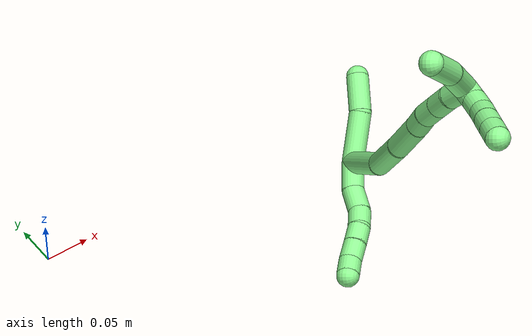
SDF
<sdf version="1.7">
 <world name="default">
  <model name="13">
   <static>0</static>
   <link name="13">
    <collision name="collision-cylinder-e_1_2_8">
     <pose>0.011893 -0.011861 0.003323 1.29767 0.767871 0.594576</pose>
     <geometry><cylinder><radius>0.0125</radius><length>0.034244</length></cylinder></geometry>
     <surface>
      <friction><ode><mu>1.16</mu><mu2>1.16</mu2><slip1>0</slip1><slip2>0</slip2></ode></friction>
      <contact><ode><kp>1e+06</kp><kd>1</kd><max_vel>0</max_vel><min_depth>0.001</min_depth></ode></contact>
     </surface>
    </collision>
    <visual name="visual-cylinder-e_1_2_8">
     <pose>0.011893 -0.011861 0.003323 1.29767 0.767871 0.594576</pose>
     <geometry><cylinder><radius>0.0125</radius><length>0.034244</length></cylinder></geometry>
     <material><ambient>0.564706 0.984314 0.572549 1</ambient></material>
    </visual>
    <collision name="collision-cylinder-e_2_8_9">
     <pose>0.032323 -0.033061 0.013438 0.941912 0.636561 0.332428</pose>
     <geometry><cylinder><radius>0.0125</radius><length>0.028723</length></cylinder></geometry>
     <surface>
      <friction><ode><mu>1.16</mu><mu2>1.16</mu2><slip1>0</slip1><slip2>0</slip2></ode></friction>
      <contact><ode><kp>1e+06</kp><kd>1</kd><max_vel>0</max_vel><min_depth>0.001</min_depth></ode></contact>
     </surface>
    </collision>
    <visual name="visual-cylinder-e_2_8_9">
     <pose>0.032323 -0.033061 0.013438 0.941912 0.636561 0.332428</pose>
     <geometry><cylinder><radius>0.0125</radius><length>0.028723</length></cylinder></geometry>
     <material><ambient>0.564706 0.984314 0.572549 1</ambient></material>
    </visual>
    <collision name="collision-cylinder-e_3_9_10">
     <pose>0.045659 -0.052507 0.0237 1.24028 0.422101 0.303634</pose>
     <geometry><cylinder><radius>0.0125</radius><length>0.023428</length></cylinder></geometry>
     <surface>
      <friction><ode><mu>1.16</mu><mu2>1.16</mu2><slip1>0</slip1><slip2>0</slip2></ode></friction>
      <contact><ode><kp>1e+06</kp><kd>1</kd><max_vel>0</max_vel><min_depth>0.001</min_depth></ode></contact>
     </surface>
    </collision>
    <visual name="visual-cylinder-e_3_9_10">
     <pose>0.045659 -0.052507 0.0237 1.24028 0.422101 0.303634</pose>
     <geometry><cylinder><radius>0.0125</radius><length>0.023428</length></cylinder></geometry>
     <material><ambient>0.564706 0.984314 0.572549 1</ambient></material>
    </visual>
    <collision name="collision-cylinder-e_4_10_11">
     <pose>0.055919 -0.071335 0.02769 1.51098 0.558729 0.527796</pose>
     <geometry><cylinder><radius>0.0125</radius><length>0.020606</length></cylinder></geometry>
     <surface>
      <friction><ode><mu>1.16</mu><mu2>1.16</mu2><slip1>0</slip1><slip2>0</slip2></ode></friction>
      <contact><ode><kp>1e+06</kp><kd>1</kd><max_vel>0</max_vel><min_depth>0.001</min_depth></ode></contact>
     </surface>
    </collision>
    <visual name="visual-cylinder-e_4_10_11">
     <pose>0.055919 -0.071335 0.02769 1.51098 0.558729 0.527796</pose>
     <geometry><cylinder><radius>0.0125</radius><length>0.020606</length></cylinder></geometry>
     <material><ambient>0.564706 0.984314 0.572549 1</ambient></material>
    </visual>
    <collision name="collision-cylinder-e_5_11_12">
     <pose>0.067702 -0.089096 0.028282 1.56306 0.61019 0.605768</pose>
     <geometry><cylinder><radius>0.0125</radius><length>0.022062</length></cylinder></geometry>
     <surface>
      <friction><ode><mu>1.16</mu><mu2>1.16</mu2><slip1>0</slip1><slip2>0</slip2></ode></friction>
      <contact><ode><kp>1e+06</kp><kd>1</kd><max_vel>0</max_vel><min_depth>0.001</min_depth></ode></contact>
     </surface>
    </collision>
    <visual name="visual-cylinder-e_5_11_12">
     <pose>0.067702 -0.089096 0.028282 1.56306 0.61019 0.605768</pose>
     <geometry><cylinder><radius>0.0125</radius><length>0.022062</length></cylinder></geometry>
     <material><ambient>0.564706 0.984314 0.572549 1</ambient></material>
    </visual>
    <collision name="collision-cylinder-e_6_12_6">
     <pose>0.07813 -0.107499 0.030601 1.33508 0.403189 0.31945</pose>
     <geometry><cylinder><radius>0.0125</radius><length>0.020938</length></cylinder></geometry>
     <surface>
      <friction><ode><mu>1.16</mu><mu2>1.16</mu2><slip1>0</slip1><slip2>0</slip2></ode></friction>
      <contact><ode><kp>1e+06</kp><kd>1</kd><max_vel>0</max_vel><min_depth>0.001</min_depth></ode></contact>
     </surface>
    </collision>
    <visual name="visual-cylinder-e_6_12_6">
     <pose>0.07813 -0.107499 0.030601 1.33508 0.403189 0.31945</pose>
     <geometry><cylinder><radius>0.0125</radius><length>0.020938</length></cylinder></geometry>
     <material><ambient>0.564706 0.984314 0.572549 1</ambient></material>
    </visual>
    <collision name="collision-cylinder-e_1_2_13">
     <pose>-0.023675 0.015211 0.001906 -1.44616 -0.996156 0.894922</pose>
     <geometry><cylinder><radius>0.0125</radius><length>0.05641</length></cylinder></geometry>
     <surface>
      <friction><ode><mu>1.16</mu><mu2>1.16</mu2><slip1>0</slip1><slip2>0</slip2></ode></friction>
      <contact><ode><kp>1e+06</kp><kd>1</kd><max_vel>0</max_vel><min_depth>0.001</min_depth></ode></contact>
     </surface>
    </collision>
    <visual name="visual-cylinder-e_1_2_13">
     <pose>-0.023675 0.015211 0.001906 -1.44616 -0.996156 0.894922</pose>
     <geometry><cylinder><radius>0.0125</radius><length>0.05641</length></cylinder></geometry>
     <material><ambient>0.564706 0.984314 0.572549 1</ambient></material>
    </visual>
    <collision name="collision-cylinder-e_2_13_5">
     <pose>-0.063729 0.043924 -0.001136 -1.92205 -0.850348 1.15017</pose>
     <geometry><cylinder><radius>0.0125</radius><length>0.04359</length></cylinder></geometry>
     <surface>
      <friction><ode><mu>1.16</mu><mu2>1.16</mu2><slip1>0</slip1><slip2>0</slip2></ode></friction>
      <contact><ode><kp>1e+06</kp><kd>1</kd><max_vel>0</max_vel><min_depth>0.001</min_depth></ode></contact>
     </surface>
    </collision>
    <visual name="visual-cylinder-e_2_13_5">
     <pose>-0.063729 0.043924 -0.001136 -1.92205 -0.850348 1.15017</pose>
     <geometry><cylinder><radius>0.0125</radius><length>0.04359</length></cylinder></geometry>
     <material><ambient>0.564706 0.984314 0.572549 1</ambient></material>
    </visual>
    <collision name="collision-cylinder-e_1_2_14">
     <pose>-0.011367 -0.028531 0.031443 0.736882 -0.2616 -0.101489</pose>
     <geometry><cylinder><radius>0.0125</radius><length>0.087907</length></cylinder></geometry>
     <surface>
      <friction><ode><mu>1.16</mu><mu2>1.16</mu2><slip1>0</slip1><slip2>0</slip2></ode></friction>
      <contact><ode><kp>1e+06</kp><kd>1</kd><max_vel>0</max_vel><min_depth>0.001</min_depth></ode></contact>
     </surface>
    </collision>
    <visual name="visual-cylinder-e_1_2_14">
     <pose>-0.011367 -0.028531 0.031443 0.736882 -0.2616 -0.101489</pose>
     <geometry><cylinder><radius>0.0125</radius><length>0.087907</length></cylinder></geometry>
     <material><ambient>0.564706 0.984314 0.572549 1</ambient></material>
    </visual>
    <collision name="collision-cylinder-e_2_14_15">
     <pose>-0.04013 -0.074826 0.084959 0.67764 -0.550603 -0.198439</pose>
     <geometry><cylinder><radius>0.0125</radius><length>0.066495</length></cylinder></geometry>
     <surface>
      <friction><ode><mu>1.16</mu><mu2>1.16</mu2><slip1>0</slip1><slip2>0</slip2></ode></friction>
      <contact><ode><kp>1e+06</kp><kd>1</kd><max_vel>0</max_vel><min_depth>0.001</min_depth></ode></contact>
     </surface>
    </collision>
    <visual name="visual-cylinder-e_2_14_15">
     <pose>-0.04013 -0.074826 0.084959 0.67764 -0.550603 -0.198439</pose>
     <geometry><cylinder><radius>0.0125</radius><length>0.066495</length></cylinder></geometry>
     <material><ambient>0.564706 0.984314 0.572549 1</ambient></material>
    </visual>
    <collision name="collision-cylinder-e_3_15_16">
     <pose>-0.07263 -0.10206 0.124498 0.496872 -0.650052 -0.170551</pose>
     <geometry><cylinder><radius>0.0125</radius><length>0.049916</length></cylinder></geometry>
     <surface>
      <friction><ode><mu>1.16</mu><mu2>1.16</mu2><slip1>0</slip1><slip2>0</slip2></ode></friction>
      <contact><ode><kp>1e+06</kp><kd>1</kd><max_vel>0</max_vel><min_depth>0.001</min_depth></ode></contact>
     </surface>
    </collision>
    <visual name="visual-cylinder-e_3_15_16">
     <pose>-0.07263 -0.10206 0.124498 0.496872 -0.650052 -0.170551</pose>
     <geometry><cylinder><radius>0.0125</radius><length>0.049916</length></cylinder></geometry>
     <material><ambient>0.564706 0.984314 0.572549 1</ambient></material>
    </visual>
    <collision name="collision-cylinder-e_4_16_17">
     <pose>-0.09503 -0.115183 0.149385 0.457317 -0.722709 -0.175468</pose>
     <geometry><cylinder><radius>0.0125</radius><length>0.022056</length></cylinder></geometry>
     <surface>
      <friction><ode><mu>1.16</mu><mu2>1.16</mu2><slip1>0</slip1><slip2>0</slip2></ode></friction>
      <contact><ode><kp>1e+06</kp><kd>1</kd><max_vel>0</max_vel><min_depth>0.001</min_depth></ode></contact>
     </surface>
    </collision>
    <visual name="visual-cylinder-e_4_16_17">
     <pose>-0.09503 -0.115183 0.149385 0.457317 -0.722709 -0.175468</pose>
     <geometry><cylinder><radius>0.0125</radius><length>0.022056</length></cylinder></geometry>
     <material><ambient>0.564706 0.984314 0.572549 1</ambient></material>
    </visual>
    <collision name="collision-cylinder-e_5_17_18">
     <pose>-0.10886 -0.122703 0.166165 0.391938 -0.573128 -0.116863</pose>
     <geometry><cylinder><radius>0.0125</radius><length>0.024106</length></cylinder></geometry>
     <surface>
      <friction><ode><mu>1.16</mu><mu2>1.16</mu2><slip1>0</slip1><slip2>0</slip2></ode></friction>
      <contact><ode><kp>1e+06</kp><kd>1</kd><max_vel>0</max_vel><min_depth>0.001</min_depth></ode></contact>
     </surface>
    </collision>
    <visual name="visual-cylinder-e_5_17_18">
     <pose>-0.10886 -0.122703 0.166165 0.391938 -0.573128 -0.116863</pose>
     <geometry><cylinder><radius>0.0125</radius><length>0.024106</length></cylinder></geometry>
     <material><ambient>0.564706 0.984314 0.572549 1</ambient></material>
    </visual>
    <collision name="collision-cylinder-e_6_18_19">
     <pose>-0.121993 -0.13111 0.185058 0.444241 -0.55851 -0.129342</pose>
     <geometry><cylinder><radius>0.0125</radius><length>0.024902</length></cylinder></geometry>
     <surface>
      <friction><ode><mu>1.16</mu><mu2>1.16</mu2><slip1>0</slip1><slip2>0</slip2></ode></friction>
      <contact><ode><kp>1e+06</kp><kd>1</kd><max_vel>0</max_vel><min_depth>0.001</min_depth></ode></contact>
     </surface>
    </collision>
    <visual name="visual-cylinder-e_6_18_19">
     <pose>-0.121993 -0.13111 0.185058 0.444241 -0.55851 -0.129342</pose>
     <geometry><cylinder><radius>0.0125</radius><length>0.024902</length></cylinder></geometry>
     <material><ambient>0.564706 0.984314 0.572549 1</ambient></material>
    </visual>
    <collision name="collision-cylinder-e_7_19_1">
     <pose>-0.134075 -0.1386 0.20521 0.271251 -0.461687 -0.064125</pose>
     <geometry><cylinder><radius>0.0125</radius><length>0.024619</length></cylinder></geometry>
     <surface>
      <friction><ode><mu>1.16</mu><mu2>1.16</mu2><slip1>0</slip1><slip2>0</slip2></ode></friction>
      <contact><ode><kp>1e+06</kp><kd>1</kd><max_vel>0</max_vel><min_depth>0.001</min_depth></ode></contact>
     </surface>
    </collision>
    <visual name="visual-cylinder-e_7_19_1">
     <pose>-0.134075 -0.1386 0.20521 0.271251 -0.461687 -0.064125</pose>
     <geometry><cylinder><radius>0.0125</radius><length>0.024619</length></cylinder></geometry>
     <material><ambient>0.564706 0.984314 0.572549 1</ambient></material>
    </visual>
    <collision name="collision-cylinder-e_1_1_20">
     <pose>-0.15608 -0.163858 0.219743 1.39704 -0.630289 -0.534445</pose>
     <geometry><cylinder><radius>0.0125</radius><length>0.056064</length></cylinder></geometry>
     <surface>
      <friction><ode><mu>1.16</mu><mu2>1.16</mu2><slip1>0</slip1><slip2>0</slip2></ode></friction>
      <contact><ode><kp>1e+06</kp><kd>1</kd><max_vel>0</max_vel><min_depth>0.001</min_depth></ode></contact>
     </surface>
    </collision>
    <visual name="visual-cylinder-e_1_1_20">
     <pose>-0.15608 -0.163858 0.219743 1.39704 -0.630289 -0.534445</pose>
     <geometry><cylinder><radius>0.0125</radius><length>0.056064</length></cylinder></geometry>
     <material><ambient>0.564706 0.984314 0.572549 1</ambient></material>
    </visual>
    <collision name="collision-cylinder-e_2_20_4">
     <pose>-0.184442 -0.204666 0.223575 1.57529 -0.569259 -0.571685</pose>
     <geometry><cylinder><radius>0.0125</radius><length>0.043936</length></cylinder></geometry>
     <surface>
      <friction><ode><mu>1.16</mu><mu2>1.16</mu2><slip1>0</slip1><slip2>0</slip2></ode></friction>
      <contact><ode><kp>1e+06</kp><kd>1</kd><max_vel>0</max_vel><min_depth>0.001</min_depth></ode></contact>
     </surface>
    </collision>
    <visual name="visual-cylinder-e_2_20_4">
     <pose>-0.184442 -0.204666 0.223575 1.57529 -0.569259 -0.571685</pose>
     <geometry><cylinder><radius>0.0125</radius><length>0.043936</length></cylinder></geometry>
     <material><ambient>0.564706 0.984314 0.572549 1</ambient></material>
    </visual>
    <collision name="collision-cylinder-e_1_1_21">
     <pose>-0.135892 -0.148052 0.222486 0.773246 0.375365 0.154329</pose>
     <geometry><cylinder><radius>0.0125</radius><length>0.02</length></cylinder></geometry>
     <surface>
      <friction><ode><mu>1.16</mu><mu2>1.16</mu2><slip1>0</slip1><slip2>0</slip2></ode></friction>
      <contact><ode><kp>1e+06</kp><kd>1</kd><max_vel>0</max_vel><min_depth>0.001</min_depth></ode></contact>
     </surface>
    </collision>
    <visual name="visual-cylinder-e_1_1_21">
     <pose>-0.135892 -0.148052 0.222486 0.773246 0.375365 0.154329</pose>
     <geometry><cylinder><radius>0.0125</radius><length>0.02</length></cylinder></geometry>
     <material><ambient>0.564706 0.984314 0.572549 1</ambient></material>
    </visual>
    <collision name="collision-cylinder-e_2_21_22">
     <pose>-0.129295 -0.161641 0.235558 0.835496 0.297476 0.132829</pose>
     <geometry><cylinder><radius>0.0125</radius><length>0.02</length></cylinder></geometry>
     <surface>
      <friction><ode><mu>1.16</mu><mu2>1.16</mu2><slip1>0</slip1><slip2>0</slip2></ode></friction>
      <contact><ode><kp>1e+06</kp><kd>1</kd><max_vel>0</max_vel><min_depth>0.001</min_depth></ode></contact>
     </surface>
    </collision>
    <visual name="visual-cylinder-e_2_21_22">
     <pose>-0.129295 -0.161641 0.235558 0.835496 0.297476 0.132829</pose>
     <geometry><cylinder><radius>0.0125</radius><length>0.02</length></cylinder></geometry>
     <material><ambient>0.564706 0.984314 0.572549 1</ambient></material>
    </visual>
    <collision name="collision-cylinder-e_3_22_23">
     <pose>-0.125343 -0.176993 0.247512 0.980034 0.102262 0.054582</pose>
     <geometry><cylinder><radius>0.0125</radius><length>0.02</length></cylinder></geometry>
     <surface>
      <friction><ode><mu>1.16</mu><mu2>1.16</mu2><slip1>0</slip1><slip2>0</slip2></ode></friction>
      <contact><ode><kp>1e+06</kp><kd>1</kd><max_vel>0</max_vel><min_depth>0.001</min_depth></ode></contact>
     </surface>
    </collision>
    <visual name="visual-cylinder-e_3_22_23">
     <pose>-0.125343 -0.176993 0.247512 0.980034 0.102262 0.054582</pose>
     <geometry><cylinder><radius>0.0125</radius><length>0.02</length></cylinder></geometry>
     <material><ambient>0.564706 0.984314 0.572549 1</ambient></material>
    </visual>
    <collision name="collision-cylinder-e_4_23_24">
     <pose>-0.122766 -0.193281 0.258811 0.948534 0.156224 0.080317</pose>
     <geometry><cylinder><radius>0.0125</radius><length>0.02</length></cylinder></geometry>
     <surface>
      <friction><ode><mu>1.16</mu><mu2>1.16</mu2><slip1>0</slip1><slip2>0</slip2></ode></friction>
      <contact><ode><kp>1e+06</kp><kd>1</kd><max_vel>0</max_vel><min_depth>0.001</min_depth></ode></contact>
     </surface>
    </collision>
    <visual name="visual-cylinder-e_4_23_24">
     <pose>-0.122766 -0.193281 0.258811 0.948534 0.156224 0.080317</pose>
     <geometry><cylinder><radius>0.0125</radius><length>0.02</length></cylinder></geometry>
     <material><ambient>0.564706 0.984314 0.572549 1</ambient></material>
    </visual>
    <collision name="collision-cylinder-e_5_24_3">
     <pose>-0.119639 -0.209336 0.270321 0.949074 0.157806 0.081187</pose>
     <geometry><cylinder><radius>0.0125</radius><length>0.02</length></cylinder></geometry>
     <surface>
      <friction><ode><mu>1.16</mu><mu2>1.16</mu2><slip1>0</slip1><slip2>0</slip2></ode></friction>
      <contact><ode><kp>1e+06</kp><kd>1</kd><max_vel>0</max_vel><min_depth>0.001</min_depth></ode></contact>
     </surface>
    </collision>
    <visual name="visual-cylinder-e_5_24_3">
     <pose>-0.119639 -0.209336 0.270321 0.949074 0.157806 0.081187</pose>
     <geometry><cylinder><radius>0.0125</radius><length>0.02</length></cylinder></geometry>
     <material><ambient>0.564706 0.984314 0.572549 1</ambient></material>
    </visual>
    <collision name="collision-sphere-3">
     <pose>-0.118067 -0.217363 0.276073 0 -0 0</pose>
     <geometry><sphere><radius>0.0125</radius></sphere></geometry>
     <surface>
      <friction><ode><mu>1.16</mu><mu2>1.16</mu2><slip1>0</slip1><slip2>0</slip2></ode></friction>
      <contact><ode><kp>1e+06</kp><kd>1</kd><max_vel>0</max_vel><min_depth>0.001</min_depth></ode></contact>
     </surface>
    </collision>
    <visual name="visual-sphere-3">
     <pose>-0.118067 -0.217363 0.276073 0 -0 0</pose>
     <geometry><sphere><radius>0.0125</radius></sphere></geometry>
     <material><ambient>0.564706 0.984314 0.572549 1</ambient></material>
    </visual>
    <collision name="collision-sphere-24">
     <pose>-0.121211 -0.201308 0.264569 0 -0 0</pose>
     <geometry><sphere><radius>0.0125</radius></sphere></geometry>
     <surface>
      <friction><ode><mu>1.16</mu><mu2>1.16</mu2><slip1>0</slip1><slip2>0</slip2></ode></friction>
      <contact><ode><kp>1e+06</kp><kd>1</kd><max_vel>0</max_vel><min_depth>0.001</min_depth></ode></contact>
     </surface>
    </collision>
    <visual name="visual-sphere-24">
     <pose>-0.121211 -0.201308 0.264569 0 -0 0</pose>
     <geometry><sphere><radius>0.0125</radius></sphere></geometry>
     <material><ambient>0.564706 0.984314 0.572549 1</ambient></material>
    </visual>
    <collision name="collision-sphere-23">
     <pose>-0.124322 -0.185255 0.253053 0 -0 0</pose>
     <geometry><sphere><radius>0.0125</radius></sphere></geometry>
     <surface>
      <friction><ode><mu>1.16</mu><mu2>1.16</mu2><slip1>0</slip1><slip2>0</slip2></ode></friction>
      <contact><ode><kp>1e+06</kp><kd>1</kd><max_vel>0</max_vel><min_depth>0.001</min_depth></ode></contact>
     </surface>
    </collision>
    <visual name="visual-sphere-23">
     <pose>-0.124322 -0.185255 0.253053 0 -0 0</pose>
     <geometry><sphere><radius>0.0125</radius></sphere></geometry>
     <material><ambient>0.564706 0.984314 0.572549 1</ambient></material>
    </visual>
    <collision name="collision-sphere-22">
     <pose>-0.126364 -0.168731 0.241971 0 -0 0</pose>
     <geometry><sphere><radius>0.0125</radius></sphere></geometry>
     <surface>
      <friction><ode><mu>1.16</mu><mu2>1.16</mu2><slip1>0</slip1><slip2>0</slip2></ode></friction>
      <contact><ode><kp>1e+06</kp><kd>1</kd><max_vel>0</max_vel><min_depth>0.001</min_depth></ode></contact>
     </surface>
    </collision>
    <visual name="visual-sphere-22">
     <pose>-0.126364 -0.168731 0.241971 0 -0 0</pose>
     <geometry><sphere><radius>0.0125</radius></sphere></geometry>
     <material><ambient>0.564706 0.984314 0.572549 1</ambient></material>
    </visual>
    <collision name="collision-sphere-21">
     <pose>-0.132226 -0.15455 0.229144 0 -0 0</pose>
     <geometry><sphere><radius>0.0125</radius></sphere></geometry>
     <surface>
      <friction><ode><mu>1.16</mu><mu2>1.16</mu2><slip1>0</slip1><slip2>0</slip2></ode></friction>
      <contact><ode><kp>1e+06</kp><kd>1</kd><max_vel>0</max_vel><min_depth>0.001</min_depth></ode></contact>
     </surface>
    </collision>
    <visual name="visual-sphere-21">
     <pose>-0.132226 -0.15455 0.229144 0 -0 0</pose>
     <geometry><sphere><radius>0.0125</radius></sphere></geometry>
     <material><ambient>0.564706 0.984314 0.572549 1</ambient></material>
    </visual>
    <collision name="collision-sphere-4">
     <pose>-0.196283 -0.22317 0.223492 0 -0 0</pose>
     <geometry><sphere><radius>0.0125</radius></sphere></geometry>
     <surface>
      <friction><ode><mu>1.16</mu><mu2>1.16</mu2><slip1>0</slip1><slip2>0</slip2></ode></friction>
      <contact><ode><kp>1e+06</kp><kd>1</kd><max_vel>0</max_vel><min_depth>0.001</min_depth></ode></contact>
     </surface>
    </collision>
    <visual name="visual-sphere-4">
     <pose>-0.196283 -0.22317 0.223492 0 -0 0</pose>
     <geometry><sphere><radius>0.0125</radius></sphere></geometry>
     <material><ambient>0.564706 0.984314 0.572549 1</ambient></material>
    </visual>
    <collision name="collision-sphere-20">
     <pose>-0.172601 -0.186163 0.223658 0 -0 0</pose>
     <geometry><sphere><radius>0.0125</radius></sphere></geometry>
     <surface>
      <friction><ode><mu>1.16</mu><mu2>1.16</mu2><slip1>0</slip1><slip2>0</slip2></ode></friction>
      <contact><ode><kp>1e+06</kp><kd>1</kd><max_vel>0</max_vel><min_depth>0.001</min_depth></ode></contact>
     </surface>
    </collision>
    <visual name="visual-sphere-20">
     <pose>-0.172601 -0.186163 0.223658 0 -0 0</pose>
     <geometry><sphere><radius>0.0125</radius></sphere></geometry>
     <material><ambient>0.564706 0.984314 0.572549 1</ambient></material>
    </visual>
    <collision name="collision-sphere-12">
     <pose>0.074023 -0.098136 0.028352 0 -0 0</pose>
     <geometry><sphere><radius>0.0125</radius></sphere></geometry>
     <surface>
      <friction><ode><mu>1.16</mu><mu2>1.16</mu2><slip1>0</slip1><slip2>0</slip2></ode></friction>
      <contact><ode><kp>1e+06</kp><kd>1</kd><max_vel>0</max_vel><min_depth>0.001</min_depth></ode></contact>
     </surface>
    </collision>
    <visual name="visual-sphere-12">
     <pose>0.074023 -0.098136 0.028352 0 -0 0</pose>
     <geometry><sphere><radius>0.0125</radius></sphere></geometry>
     <material><ambient>0.564706 0.984314 0.572549 1</ambient></material>
    </visual>
    <collision name="collision-sphere-11">
     <pose>0.061381 -0.080056 0.028212 0 -0 0</pose>
     <geometry><sphere><radius>0.0125</radius></sphere></geometry>
     <surface>
      <friction><ode><mu>1.16</mu><mu2>1.16</mu2><slip1>0</slip1><slip2>0</slip2></ode></friction>
      <contact><ode><kp>1e+06</kp><kd>1</kd><max_vel>0</max_vel><min_depth>0.001</min_depth></ode></contact>
     </surface>
    </collision>
    <visual name="visual-sphere-11">
     <pose>0.061381 -0.080056 0.028212 0 -0 0</pose>
     <geometry><sphere><radius>0.0125</radius></sphere></geometry>
     <material><ambient>0.564706 0.984314 0.572549 1</ambient></material>
    </visual>
    <collision name="collision-sphere-10">
     <pose>0.050458 -0.062615 0.027168 0 -0 0</pose>
     <geometry><sphere><radius>0.0125</radius></sphere></geometry>
     <surface>
      <friction><ode><mu>1.16</mu><mu2>1.16</mu2><slip1>0</slip1><slip2>0</slip2></ode></friction>
      <contact><ode><kp>1e+06</kp><kd>1</kd><max_vel>0</max_vel><min_depth>0.001</min_depth></ode></contact>
     </surface>
    </collision>
    <visual name="visual-sphere-10">
     <pose>0.050458 -0.062615 0.027168 0 -0 0</pose>
     <geometry><sphere><radius>0.0125</radius></sphere></geometry>
     <material><ambient>0.564706 0.984314 0.572549 1</ambient></material>
    </visual>
    <collision name="collision-sphere-9">
     <pose>0.04086 -0.0424 0.020232 0 -0 0</pose>
     <geometry><sphere><radius>0.0125</radius></sphere></geometry>
     <surface>
      <friction><ode><mu>1.16</mu><mu2>1.16</mu2><slip1>0</slip1><slip2>0</slip2></ode></friction>
      <contact><ode><kp>1e+06</kp><kd>1</kd><max_vel>0</max_vel><min_depth>0.001</min_depth></ode></contact>
     </surface>
    </collision>
    <visual name="visual-sphere-9">
     <pose>0.04086 -0.0424 0.020232 0 -0 0</pose>
     <geometry><sphere><radius>0.0125</radius></sphere></geometry>
     <material><ambient>0.564706 0.984314 0.572549 1</ambient></material>
    </visual>
    <collision name="collision-sphere-2">
     <geometry><sphere><radius>0.0125</radius></sphere></geometry>
     <surface>
      <friction><ode><mu>1.16</mu><mu2>1.16</mu2><slip1>0</slip1><slip2>0</slip2></ode></friction>
      <contact><ode><kp>1e+06</kp><kd>1</kd><max_vel>0</max_vel><min_depth>0.001</min_depth></ode></contact>
     </surface>
    </collision>
    <visual name="visual-sphere-2">
     <geometry><sphere><radius>0.0125</radius></sphere></geometry>
     <material><ambient>0.564706 0.984314 0.572549 1</ambient></material>
    </visual>
    <collision name="collision-sphere-19">
     <pose>-0.128592 -0.135648 0.194592 0 -0 0</pose>
     <geometry><sphere><radius>0.0125</radius></sphere></geometry>
     <surface>
      <friction><ode><mu>1.16</mu><mu2>1.16</mu2><slip1>0</slip1><slip2>0</slip2></ode></friction>
      <contact><ode><kp>1e+06</kp><kd>1</kd><max_vel>0</max_vel><min_depth>0.001</min_depth></ode></contact>
     </surface>
    </collision>
    <visual name="visual-sphere-19">
     <pose>-0.128592 -0.135648 0.194592 0 -0 0</pose>
     <geometry><sphere><radius>0.0125</radius></sphere></geometry>
     <material><ambient>0.564706 0.984314 0.572549 1</ambient></material>
    </visual>
    <collision name="collision-sphere-8">
     <pose>0.023786 -0.023721 0.006645 0 -0 0</pose>
     <geometry><sphere><radius>0.0125</radius></sphere></geometry>
     <surface>
      <friction><ode><mu>1.16</mu><mu2>1.16</mu2><slip1>0</slip1><slip2>0</slip2></ode></friction>
      <contact><ode><kp>1e+06</kp><kd>1</kd><max_vel>0</max_vel><min_depth>0.001</min_depth></ode></contact>
     </surface>
    </collision>
    <visual name="visual-sphere-8">
     <pose>0.023786 -0.023721 0.006645 0 -0 0</pose>
     <geometry><sphere><radius>0.0125</radius></sphere></geometry>
     <material><ambient>0.564706 0.984314 0.572549 1</ambient></material>
    </visual>
    <collision name="collision-sphere-6">
     <pose>0.082238 -0.116862 0.03285 0 -0 0</pose>
     <geometry><sphere><radius>0.0125</radius></sphere></geometry>
     <surface>
      <friction><ode><mu>1.16</mu><mu2>1.16</mu2><slip1>0</slip1><slip2>0</slip2></ode></friction>
      <contact><ode><kp>1e+06</kp><kd>1</kd><max_vel>0</max_vel><min_depth>0.001</min_depth></ode></contact>
     </surface>
    </collision>
    <visual name="visual-sphere-6">
     <pose>0.082238 -0.116862 0.03285 0 -0 0</pose>
     <geometry><sphere><radius>0.0125</radius></sphere></geometry>
     <material><ambient>0.564706 0.984314 0.572549 1</ambient></material>
    </visual>
    <collision name="collision-sphere-13">
     <pose>-0.04735 0.030423 0.003812 0 -0 0</pose>
     <geometry><sphere><radius>0.0125</radius></sphere></geometry>
     <surface>
      <friction><ode><mu>1.16</mu><mu2>1.16</mu2><slip1>0</slip1><slip2>0</slip2></ode></friction>
      <contact><ode><kp>1e+06</kp><kd>1</kd><max_vel>0</max_vel><min_depth>0.001</min_depth></ode></contact>
     </surface>
    </collision>
    <visual name="visual-sphere-13">
     <pose>-0.04735 0.030423 0.003812 0 -0 0</pose>
     <geometry><sphere><radius>0.0125</radius></sphere></geometry>
     <material><ambient>0.564706 0.984314 0.572549 1</ambient></material>
    </visual>
    <collision name="collision-sphere-5">
     <pose>-0.080108 0.057424 -0.006083 0 -0 0</pose>
     <geometry><sphere><radius>0.0125</radius></sphere></geometry>
     <surface>
      <friction><ode><mu>1.16</mu><mu2>1.16</mu2><slip1>0</slip1><slip2>0</slip2></ode></friction>
      <contact><ode><kp>1e+06</kp><kd>1</kd><max_vel>0</max_vel><min_depth>0.001</min_depth></ode></contact>
     </surface>
    </collision>
    <visual name="visual-sphere-5">
     <pose>-0.080108 0.057424 -0.006083 0 -0 0</pose>
     <geometry><sphere><radius>0.0125</radius></sphere></geometry>
     <material><ambient>0.564706 0.984314 0.572549 1</ambient></material>
    </visual>
    <collision name="collision-sphere-14">
     <pose>-0.022735 -0.057062 0.062886 0 -0 0</pose>
     <geometry><sphere><radius>0.0125</radius></sphere></geometry>
     <surface>
      <friction><ode><mu>1.16</mu><mu2>1.16</mu2><slip1>0</slip1><slip2>0</slip2></ode></friction>
      <contact><ode><kp>1e+06</kp><kd>1</kd><max_vel>0</max_vel><min_depth>0.001</min_depth></ode></contact>
     </surface>
    </collision>
    <visual name="visual-sphere-14">
     <pose>-0.022735 -0.057062 0.062886 0 -0 0</pose>
     <geometry><sphere><radius>0.0125</radius></sphere></geometry>
     <material><ambient>0.564706 0.984314 0.572549 1</ambient></material>
    </visual>
    <collision name="collision-sphere-15">
     <pose>-0.057525 -0.09259 0.107033 0 -0 0</pose>
     <geometry><sphere><radius>0.0125</radius></sphere></geometry>
     <surface>
      <friction><ode><mu>1.16</mu><mu2>1.16</mu2><slip1>0</slip1><slip2>0</slip2></ode></friction>
      <contact><ode><kp>1e+06</kp><kd>1</kd><max_vel>0</max_vel><min_depth>0.001</min_depth></ode></contact>
     </surface>
    </collision>
    <visual name="visual-sphere-15">
     <pose>-0.057525 -0.09259 0.107033 0 -0 0</pose>
     <geometry><sphere><radius>0.0125</radius></sphere></geometry>
     <material><ambient>0.564706 0.984314 0.572549 1</ambient></material>
    </visual>
    <collision name="collision-sphere-16">
     <pose>-0.087735 -0.111531 0.141964 0 -0 0</pose>
     <geometry><sphere><radius>0.0125</radius></sphere></geometry>
     <surface>
      <friction><ode><mu>1.16</mu><mu2>1.16</mu2><slip1>0</slip1><slip2>0</slip2></ode></friction>
      <contact><ode><kp>1e+06</kp><kd>1</kd><max_vel>0</max_vel><min_depth>0.001</min_depth></ode></contact>
     </surface>
    </collision>
    <visual name="visual-sphere-16">
     <pose>-0.087735 -0.111531 0.141964 0 -0 0</pose>
     <geometry><sphere><radius>0.0125</radius></sphere></geometry>
     <material><ambient>0.564706 0.984314 0.572549 1</ambient></material>
    </visual>
    <collision name="collision-sphere-17">
     <pose>-0.102324 -0.118835 0.156806 0 -0 0</pose>
     <geometry><sphere><radius>0.0125</radius></sphere></geometry>
     <surface>
      <friction><ode><mu>1.16</mu><mu2>1.16</mu2><slip1>0</slip1><slip2>0</slip2></ode></friction>
      <contact><ode><kp>1e+06</kp><kd>1</kd><max_vel>0</max_vel><min_depth>0.001</min_depth></ode></contact>
     </surface>
    </collision>
    <visual name="visual-sphere-17">
     <pose>-0.102324 -0.118835 0.156806 0 -0 0</pose>
     <geometry><sphere><radius>0.0125</radius></sphere></geometry>
     <material><ambient>0.564706 0.984314 0.572549 1</ambient></material>
    </visual>
    <collision name="collision-sphere-18">
     <pose>-0.115395 -0.126572 0.175524 0 -0 0</pose>
     <geometry><sphere><radius>0.0125</radius></sphere></geometry>
     <surface>
      <friction><ode><mu>1.16</mu><mu2>1.16</mu2><slip1>0</slip1><slip2>0</slip2></ode></friction>
      <contact><ode><kp>1e+06</kp><kd>1</kd><max_vel>0</max_vel><min_depth>0.001</min_depth></ode></contact>
     </surface>
    </collision>
    <visual name="visual-sphere-18">
     <pose>-0.115395 -0.126572 0.175524 0 -0 0</pose>
     <geometry><sphere><radius>0.0125</radius></sphere></geometry>
     <material><ambient>0.564706 0.984314 0.572549 1</ambient></material>
    </visual>
    <collision name="collision-sphere-1">
     <pose>-0.139558 -0.141553 0.215828 0 -0 0</pose>
     <geometry><sphere><radius>0.0125</radius></sphere></geometry>
     <surface>
      <friction><ode><mu>1.16</mu><mu2>1.16</mu2><slip1>0</slip1><slip2>0</slip2></ode></friction>
      <contact><ode><kp>1e+06</kp><kd>1</kd><max_vel>0</max_vel><min_depth>0.001</min_depth></ode></contact>
     </surface>
    </collision>
    <visual name="visual-sphere-1">
     <pose>-0.139558 -0.141553 0.215828 0 -0 0</pose>
     <geometry><sphere><radius>0.0125</radius></sphere></geometry>
     <material><ambient>0.564706 0.984314 0.572549 1</ambient></material>
    </visual>
    <inertial>
     <pose>-0.060388 -0.08829 0.108498 0 -0 0</pose>
     <mass>0.75</mass>
     <inertia>
      <ixx>0.000122</ixx>
      <ixy>0</ixy>
      <ixz>0</ixz>
      <iyy>9.2e-05</iyy>
      <iyz>0</iyz>
      <izz>0.000175</izz>
     </inertia>
    </inertial>
   </link>
   <pose>0.332877 -0.109388 0.040676 -0.708907 1.10132 -1.78166</pose>
  </model>
 </world>
</sdf>
